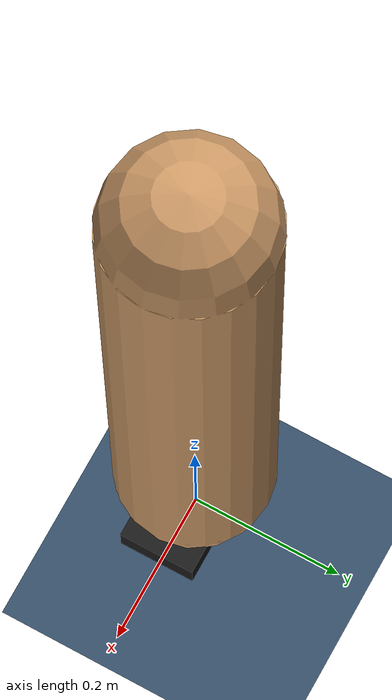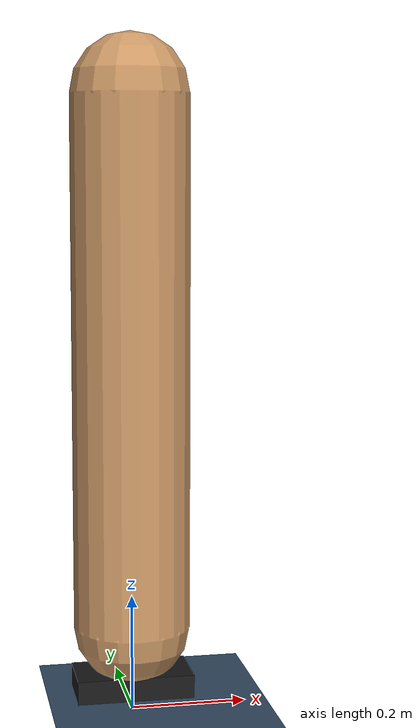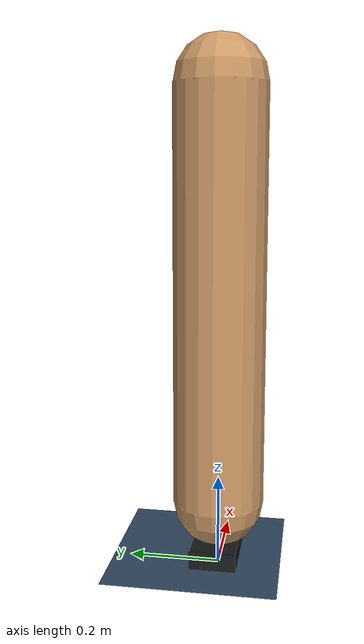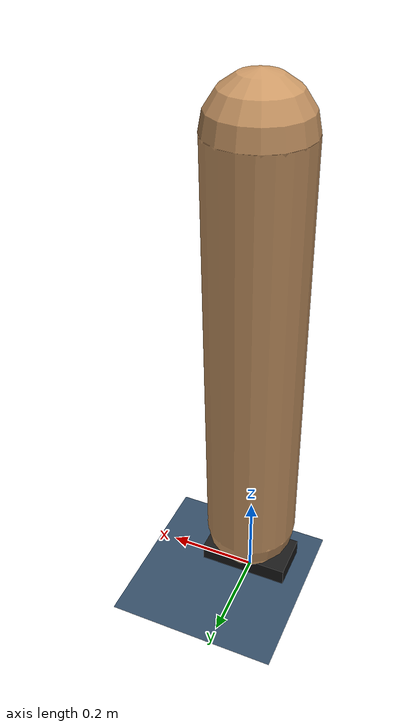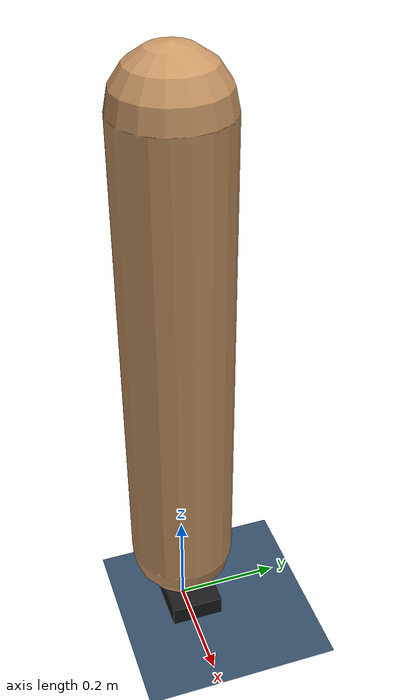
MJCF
<?xml version="1.0" ?>
<!-- Simple MuJoCo Balance Model - Week 1
     Inverted pendulum with muscle actuators (proper foundation)
-->
<mujoco model="simple_balance">

  <!-- Compiler settings -->
  <compiler angle="radian" inertiafromgeom="true"/>

  <!-- Options for simulation -->
  <option timestep="0.01" gravity="0 0 -9.81"/>

  <!-- Default settings -->
  <default>
    <joint limited="true" damping="0.1"/>
    <geom contype="1" conaffinity="1" friction="1 0.1 0.1"/>
    <motor ctrlrange="-1 1" ctrllimited="true"/>
  </default>

  <!-- Assets (materials, textures) -->
  <asset>
    <material name="ground" rgba="0.2 0.3 0.4 1"/>
    <material name="body" rgba="0.8 0.6 0.4 1"/>
    <material name="foot" rgba="0.1 0.1 0.1 1"/>
  </asset>

  <!-- World body (everything attaches here) -->
  <worldbody>

    <!-- Ground plane -->
    <geom name="ground" type="plane" size="5 5 1" material="ground"/>
    <light pos="0 0 3"/>

    <!-- Foot (fixed to ground - ankle joint connection) -->
    <body name="foot" pos="0 0 0.05">
      <geom name="foot_geom" type="box" size="0.1 0.05 0.02" material="foot"/>

      <!-- Body (inverted pendulum) -->
      <body name="body" pos="0 0 0.9">
        <joint name="ankle" type="hinge" axis="0 1 0" range="-0.5 0.5" pos="0 0 -0.9" damping="2.0"/>

        <!-- Body mass/inertia -->
        <geom name="body_geom" type="capsule" fromto="0 0 -0.8 0 0 0.1" size="0.1" material="body" mass="70"/>

      </body>
    </body>

  </worldbody>

  <!-- Simple motor actuators (will upgrade to muscles later) -->
  <actuator>
    <!-- Plantarflexor motor (positive torque = forward lean) -->
    <motor name="plantarflexor"
           joint="ankle"
           gear="200"
           ctrlrange="0 1"/>

    <!-- Dorsiflexor motor (negative torque = backward lean) -->
    <motor name="dorsiflexor"
           joint="ankle"
           gear="-150"
           ctrlrange="0 1"/>
  </actuator>

</mujoco>
